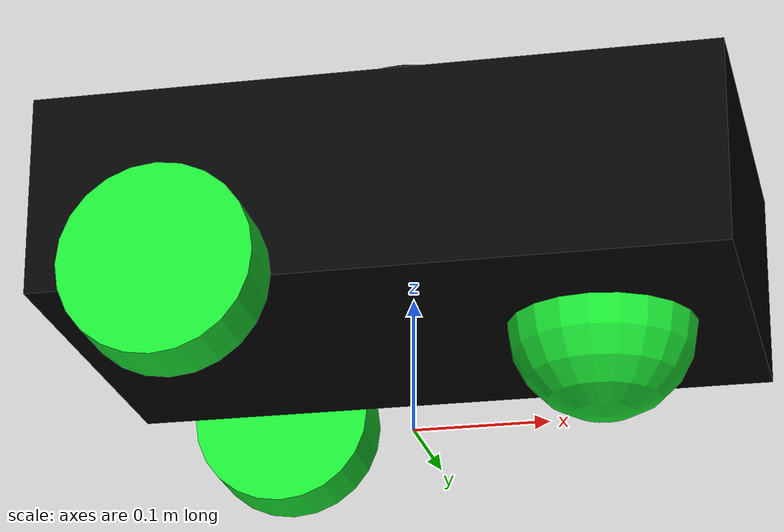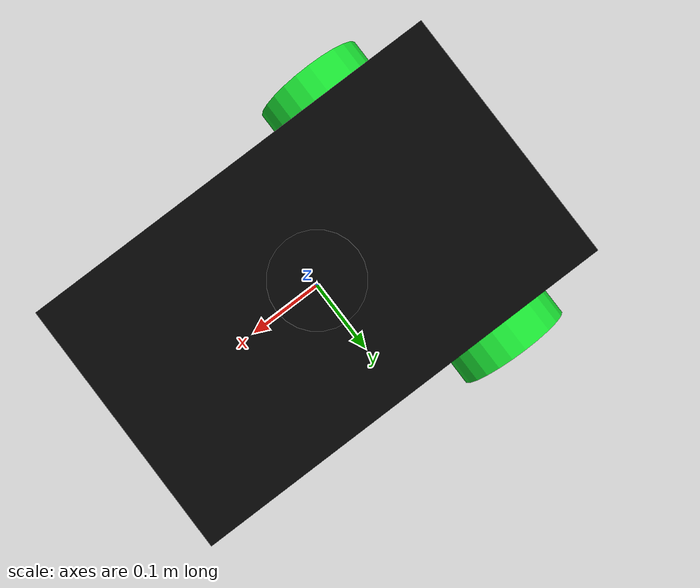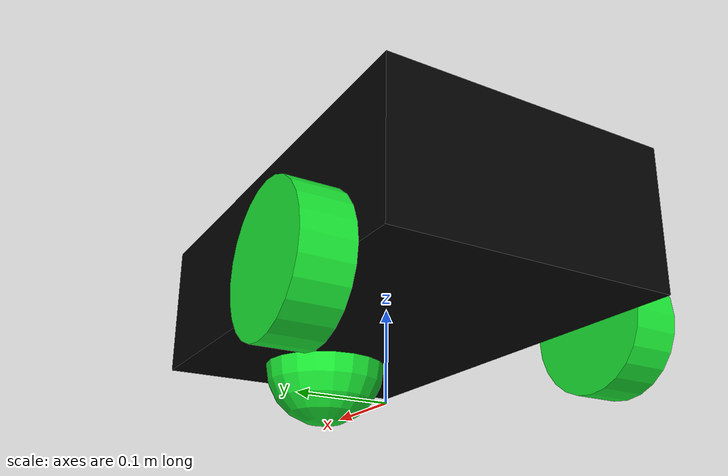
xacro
<?xml version="1.0"?>
<robot xmlns:xacro="http://www.ros.org/wiki/xacro" name="differential_drive_robot">

  <!-- Load shared params + component macros -->
  <xacro:include filename="$(find my_robot_description)/urdf/common_properties.xacro"/>
  <xacro:include filename="$(find my_robot_description)/urdf/mobile_base.xacro"/>
  <xacro:include filename="$(find my_robot_description)/urdf/lidar.xacro"/>
  <xacro:include filename="$(find my_robot_description)/urdf/gazebo_control.xacro"/>

  <!-- Build robot -->
  <xacro:mobile_base/>
  <xacro:lidar/>

  <!-- Gazebo-specific additions -->
  <xacro:gazebo_control/>

</robot>

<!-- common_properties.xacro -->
<robot xmlns:xacro="http://www.ros.org/wiki/xacro">

  <!-- Materials -->
  <material name="black">
    <color rgba="0.01 0.01 0.01 1"/>
  </material>
  <material name="green">
    <color rgba="0.1 0.9 0.2 1"/>
  </material>

  <!-- Body dimensions -->
  <xacro:property name="a" value="0.5" />
  <xacro:property name="b" value="0.15" />
  <xacro:property name="c" value="0.3" />

  <!-- Wheel and caster dimensions -->
  <xacro:property name="r" value="0.07" />
  <xacro:property name="d" value="0.05" />

  <!-- Derived offsets -->
  <xacro:property name="s1" value="${b/2+r}" />
  <xacro:property name="s2" value="${2*r}" />
  <xacro:property name="s3" value="${2*r}" />
  <xacro:property name="s4" value="${c/2+d/2}" />

  <!-- Densities -->
  <xacro:property name="d1" value="2710.0" />
  <xacro:property name="d2" value="2710.0" />
  <xacro:property name="d3" value="2710.0" />

  <!-- Masses -->
  <xacro:property name="m1" value="${d1*a*b*c}" />
  <xacro:property name="m2" value="${d2*pi*r*r*d}" />
  <xacro:property name="m3" value="${d3*(4.0/3.0)*pi*r*r*r}" />

  <!-- Inertia terms -->
  <xacro:property name="Ix_body" value="${(1/12)*m1*(b*b+c*c)}" />
  <xacro:property name="Iy_body" value="${(1/12)*m1*(b*b+a*a)}" />
  <xacro:property name="Iz_body" value="${(1/12)*m1*(a*a+c*c)}" />

  <xacro:property name="Iz_wheel" value="${0.5*m2*r*r}" />
  <xacro:property name="I_wheel" value="${(1.0/12.0)*m2*(3.0*r*r+d*d)}" />

  <xacro:property name="I_castor" value="${(2.0/5.0)*m3*r*r}" />

  <!-- Inertia macros -->
  <xacro:macro name="inertia_body">
    <inertial>
      <origin rpy="0 0 0" xyz="0 0 ${s1}"/>
      <mass value="${m1}"/>
      <inertia ixx="${Ix_body}" ixy="0.0" ixz="0.0" iyy="${Iy_body}" iyz="0.0" izz="${Iz_body}"/>
    </inertial>
  </xacro:macro>

  <xacro:macro name="inertia_wheel">
    <inertial>
      <origin rpy="1.570795 0 0" xyz="0 0 0" />
      <mass value="${m2}"/>
      <inertia ixx="${I_wheel}" ixy="0.0" ixz="0.0" iyy="${I_wheel}" iyz="0.0" izz="${Iz_wheel}"/>
    </inertial>
  </xacro:macro>

  <xacro:macro name="inertia_caster">
    <inertial>
      <origin rpy="0 0 0" xyz="0 0 0"/>
      <mass value="${m3}"/>
      <inertia ixx="${I_castor}" ixy="0.0" ixz="0.0" iyy="${I_castor}" iyz="0.0" izz="${I_castor}"/>
    </inertial>
  </xacro:macro>

</robot>

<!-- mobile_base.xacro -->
<robot xmlns:xacro="http://www.ros.org/wiki/xacro">

  <xacro:macro name="mobile_base">

    <link name="base_footprint"/>

    <joint name="body_link_joint" type="fixed">
      <parent link="base_footprint"/>
      <child link="body_link"/>
    </joint>

    <link name="body_link">
      <visual>
        <geometry>
          <box size="${a} ${c} ${b}"/>
        </geometry>
        <origin rpy="0 0 0" xyz="0 0 ${s1}" />
        <material name="black"/>
      </visual>

      <collision>
        <geometry>
          <box size="${a} ${c} ${b}"/>
        </geometry>
        <origin rpy="0 0 0" xyz="0 0 ${s1}" />
      </collision>

      <xacro:inertia_body />
    </link>

    <joint name="wheel1_joint" type="continuous">
      <parent link="body_link"/>
      <child link="wheel1_link"/>
      <origin xyz="${-s2} ${-s4} ${r}" rpy="0 0 0"/>
      <axis xyz="0 1 0"/>
      <limit effort="50000" velocity="10"/>
      <dynamics damping="1.0" friction="1.0"/>
    </joint>

    <link name="wheel1_link">
      <visual>
        <origin rpy="1.570795 0 0" xyz="0 0 0"/>
        <geometry>
          <cylinder radius="${r}" length="${d}"/>
        </geometry>
        <material name="green"/>
      </visual>

      <collision>
        <origin rpy="1.570795 0 0" xyz="0 0 0"/>
        <geometry>
          <cylinder radius="${r}" length="${d}"/>
        </geometry>
      </collision>

      <xacro:inertia_wheel/>
    </link>

    <joint name="wheel2_joint" type="continuous">
      <parent link="body_link"/>
      <child link="wheel2_link"/>
      <origin xyz="${-s2} ${s4} ${r}" rpy="0 0 0"/>
      <axis xyz="0 1 0"/>
      <limit effort="50000" velocity="10"/>
      <dynamics damping="1.0" friction="1.0"/>
    </joint>

    <link name="wheel2_link">
      <visual>
        <origin rpy="1.570795 0 0" xyz="0 0 0"/>
        <geometry>
          <cylinder radius="${r}" length="${d}"/>
        </geometry>
        <material name="green"/>
      </visual>

      <collision>
        <origin rpy="1.570795 0 0" xyz="0 0 0"/>
        <geometry>
          <cylinder radius="${r}" length="${d}"/>
        </geometry>
      </collision>

      <xacro:inertia_wheel/>
    </link>

    <joint name="caster_joint" type="fixed">
      <parent link="body_link"/>
      <child link="caster_link"/>
      <origin xyz="${s3} 0 ${r}" rpy="0 0 0"/>
    </joint>

    <link name="caster_link">
      <visual>
        <origin xyz="0 0 0" rpy="0 0 0"/>
        <geometry>
          <sphere radius="${r}"/>
        </geometry>
        <material name="green"/>
      </visual>

      <collision>
        <origin xyz="0 0 0" rpy="0 0 0"/>
        <geometry>
          <sphere radius="${r}"/>
        </geometry>
      </collision>

      <xacro:inertia_caster/>
    </link>

  </xacro:macro>

</robot>

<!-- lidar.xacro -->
<robot xmlns:xacro="http://www.ros.org/wiki/xacro">

  <xacro:macro name="lidar">

    <joint name="lidar_joint" type="fixed">
      <origin xyz="0 0 ${b+r}" rpy="0 0 0"/>
      <parent link="body_link"/>
      <child link="lidar_link"/>
    </joint>

    <link name="lidar_link">
      <visual>
        <origin xyz="0 0 0.025" rpy="0 0 0"/>
        <geometry>
          <cylinder radius="0.05" length="0.05"/>
        </geometry>
        <material name="black"/>
      </visual>

      <collision>
        <origin xyz="0 0 0.025" rpy="0 0 0"/>
        <geometry>
          <cylinder radius="0.05" length="0.05"/>
        </geometry>
      </collision>

      <inertial>
        <mass value="0.5e-6"/>
        <origin xyz="0 0 0" rpy="0 0 0"/>
        <inertia ixx="0.5e-6" ixy="0.0" ixz="0.0" iyy="0.5e-6" iyz="0.0" izz="0.5e-6"/>
      </inertial>
    </link>

  </xacro:macro>

</robot>
